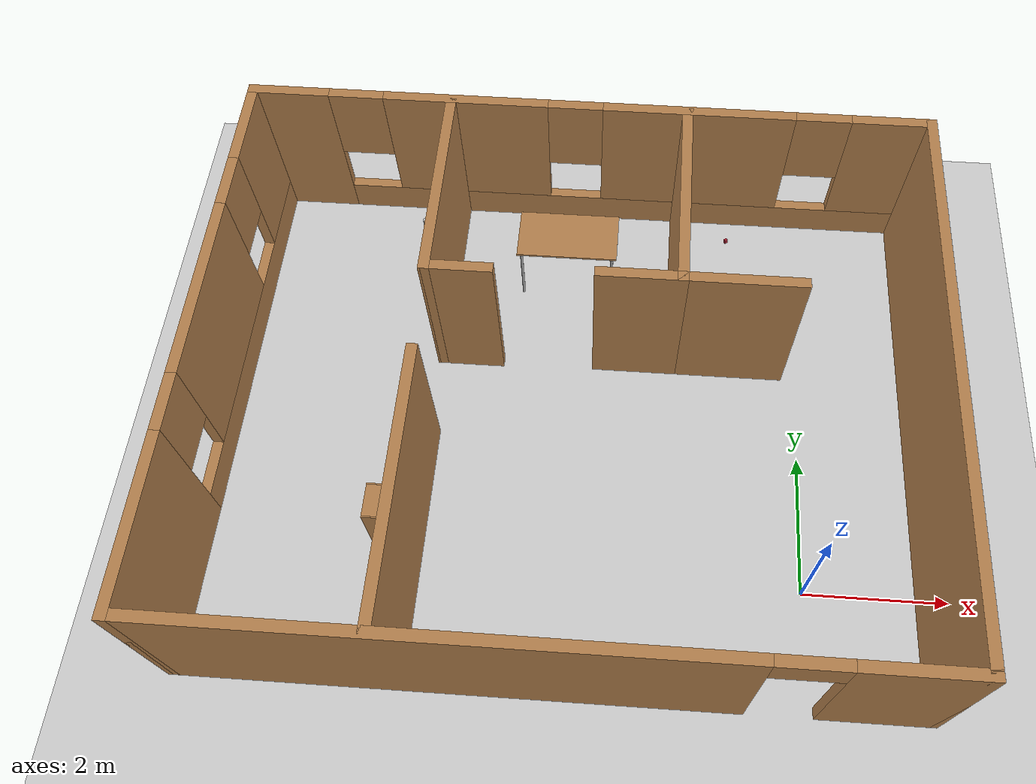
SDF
<sdf version="1.7">
 <world name="default">
  <light name="sun" type="directional">
   <pose>0 0 10 0 -0 0</pose>
   <diffuse>0.8 0.8 0.8 1</diffuse>
   <specular>0.2 0.2 0.2 1</specular>
   <attenuation>
    <range>1000</range>
    <constant>0.9</constant>
    <linear>0.01</linear>
    <quadratic>0.001</quadratic>
   </attenuation>
   <direction>-0.5 0.1 -0.9</direction>
   <spot><inner_angle>0</inner_angle><outer_angle>0</outer_angle><falloff>0</falloff></spot>
  </light>
  <model name="ground_plane">
   <static>1</static>
   <link name="link">
    <collision name="collision">
     <geometry><plane><normal>0 0 1</normal><size>100 100</size></plane></geometry>
     <surface><friction><ode><mu>100</mu><mu2>50</mu2></ode></friction></surface>
    </collision>
    <visual name="visual">
     <cast_shadows>0</cast_shadows>
     <geometry><plane><normal>0 0 1</normal><size>100 100</size></plane></geometry>
     <material>
      <script><uri>file://media/materials/scripts/gazebo.material</uri><name>Gazebo/Grey</name></script>
     </material>
    </visual>
   </link>
  </model>
  <gravity>0 0 -9.8</gravity>
  <magnetic_field>6e-06 2.3e-05 -4.2e-05</magnetic_field>
  <atmosphere type="adiabatic"/>
  <physics type="ode">
   <max_step_size>0.001</max_step_size>
   <real_time_factor>1</real_time_factor>
   <real_time_update_rate>1000</real_time_update_rate>
  </physics>
  <scene><ambient>0.4 0.4 0.4 1</ambient><background>0.7 0.7 0.7 1</background><shadows>1</shadows></scene>
  <audio><device>default</device></audio>
  <spherical_coordinates>
   <surface_model>EARTH_WGS84</surface_model>
   <latitude_deg>0</latitude_deg>
   <longitude_deg>0</longitude_deg>
   <elevation>0</elevation>
   <heading_deg>0</heading_deg>
  </spherical_coordinates>
  <model name="jessie_world.world">
   <pose>-3.31105 2.35369 0 0 -0 0</pose>
   <link name="Wall_1">
    <pose>0 -3.925 0 0 -0 0</pose>
    <visual name="Wall_1_Visual_0">
     <pose>-1.24277 0 1.25 0 -0 0</pose>
     <geometry><box><size>7.51447 0.15 2.5</size></box></geometry>
     <material>
      <script><uri>file://media/materials/scripts/gazebo.material</uri><name>Gazebo/Wood</name></script>
      <ambient>1 1 1 1</ambient>
     </material>
     <meta><layer>0</layer></meta>
    </visual>
    <collision name="Wall_1_Collision_0">
     <geometry><box><size>7.51447 0.15 2.5</size></box></geometry>
     <pose>-1.24277 0 1.25 0 -0 0</pose>
    </collision>
    <visual name="Wall_1_Visual_1">
     <pose>4.20723 0 1.25 0 -0 0</pose>
     <geometry><box><size>1.58553 0.15 2.5</size></box></geometry>
     <material>
      <script><uri>file://media/materials/scripts/gazebo.material</uri><name>Gazebo/Wood</name></script>
      <ambient>1 1 1 1</ambient>
     </material>
     <meta><layer>0</layer></meta>
    </visual>
    <collision name="Wall_1_Collision_1">
     <geometry><box><size>1.58553 0.15 2.5</size></box></geometry>
     <pose>4.20723 0 1.25 0 -0 0</pose>
    </collision>
    <visual name="Wall_1_Visual_2">
     <pose>2.96447 0 2.25 0 -0 0</pose>
     <geometry><box><size>0.9 0.15 0.5</size></box></geometry>
     <material>
      <script><uri>file://media/materials/scripts/gazebo.material</uri><name>Gazebo/Wood</name></script>
      <ambient>1 1 1 1</ambient>
     </material>
     <meta><layer>0</layer></meta>
    </visual>
    <collision name="Wall_1_Collision_2">
     <geometry><box><size>0.9 0.15 0.5</size></box></geometry>
     <pose>2.96447 0 2.25 0 -0 0</pose>
    </collision>
   </link>
   <link name="Wall_10">
    <collision name="Wall_10_Collision">
     <geometry><box><size>1.75 0.15 2.5</size></box></geometry>
     <pose>0 0 1.25 0 -0 0</pose>
    </collision>
    <visual name="Wall_10_Visual">
     <pose>0 0 1.25 0 -0 0</pose>
     <geometry><box><size>1.75 0.15 2.5</size></box></geometry>
     <material>
      <script><uri>file://media/materials/scripts/gazebo.material</uri><name>Gazebo/Wood</name></script>
      <ambient>1 1 1 1</ambient>
     </material>
     <meta><layer>0</layer></meta>
    </visual>
    <pose>2.23036 1.04462 0 0 -0 0</pose>
   </link>
   <link name="Wall_23">
    <collision name="Wall_23_Collision">
     <geometry><box><size>3 0.15 2.5</size></box></geometry>
     <pose>0 0 1.25 0 -0 0</pose>
    </collision>
    <visual name="Wall_23_Visual">
     <pose>0 0 1.25 0 -0 0</pose>
     <geometry><box><size>3 0.15 2.5</size></box></geometry>
     <material>
      <script><uri>file://media/materials/scripts/gazebo.material</uri><name>Gazebo/Wood</name></script>
      <ambient>1 1 1 1</ambient>
     </material>
     <meta><layer>0</layer></meta>
    </visual>
    <pose>-2.00813 2.42995 0 0 -0 -1.5708</pose>
   </link>
   <link name="Wall_24">
    <collision name="Wall_24_Collision">
     <geometry><box><size>1 0.15 2.5</size></box></geometry>
     <pose>0 0 1.25 0 -0 0</pose>
    </collision>
    <visual name="Wall_24_Visual">
     <pose>0 0 1.25 0 -0 0</pose>
     <geometry><box><size>1 0.15 2.5</size></box></geometry>
     <material>
      <script><uri>file://media/materials/scripts/gazebo.material</uri><name>Gazebo/Wood</name></script>
      <ambient>1 1 1 1</ambient>
     </material>
     <meta><layer>0</layer></meta>
    </visual>
    <pose>-1.58313 1.00495 0 0 -0 0</pose>
   </link>
   <link name="Wall_27">
    <collision name="Wall_27_Collision">
     <geometry><box><size>1.25 0.15 2.5</size></box></geometry>
     <pose>0 0 1.25 0 -0 0</pose>
    </collision>
    <visual name="Wall_27_Visual">
     <pose>0 0 1.25 0 -0 0</pose>
     <geometry><box><size>1.25 0.15 2.5</size></box></geometry>
     <material>
      <script><uri>file://media/materials/scripts/gazebo.material</uri><name>Gazebo/Wood</name></script>
      <ambient>1 1 1 1</ambient>
     </material>
     <meta><layer>0</layer></meta>
    </visual>
    <pose>0.880365 1.04462 0 0 -0 3.14159</pose>
   </link>
   <link name="Wall_31">
    <collision name="Wall_31_Collision">
     <geometry><box><size>3.75 0.15 2.5</size></box></geometry>
     <pose>0 0 1.25 0 -0 0</pose>
    </collision>
    <visual name="Wall_31_Visual">
     <pose>0 0 1.25 0 -0 0</pose>
     <geometry><box><size>3.75 0.15 2.5</size></box></geometry>
     <material>
      <script><uri>file://media/materials/scripts/gazebo.material</uri><name>Gazebo/Wood</name></script>
      <ambient>1 1 1 1</ambient>
     </material>
     <meta><layer>0</layer></meta>
    </visual>
    <pose>-1.98168 -2.0977 0 0 -0 -1.5708</pose>
   </link>
   <link name="Wall_5">
    <pose>-4.925 0 0 0 -0 1.5708</pose>
    <visual name="Wall_5_Visual_0">
     <pose>-2.82495 0 1.25 0 -0 0</pose>
     <geometry><box><size>2.3501 0.15 2.5</size></box></geometry>
     <material>
      <script><uri>file://media/materials/scripts/gazebo.material</uri><name>Gazebo/Wood</name></script>
      <ambient>1 1 1 1</ambient>
     </material>
     <meta><layer>0</layer></meta>
    </visual>
    <collision name="Wall_5_Collision_0">
     <geometry><box><size>2.3501 0.15 2.5</size></box></geometry>
     <pose>-2.82495 0 1.25 0 -0 0</pose>
    </collision>
    <visual name="Wall_5_Visual_1">
     <pose>1.17505 0 0.25 0 -0 0</pose>
     <geometry><box><size>5.6499 0.15 0.5</size></box></geometry>
     <material>
      <script><uri>file://media/materials/scripts/gazebo.material</uri><name>Gazebo/Wood</name></script>
      <ambient>1 1 1 1</ambient>
     </material>
     <meta><layer>0</layer></meta>
    </visual>
    <collision name="Wall_5_Collision_1">
     <geometry><box><size>5.6499 0.15 0.5</size></box></geometry>
     <pose>1.17505 0 0.25 0 -0 0</pose>
    </collision>
    <visual name="Wall_5_Visual_2">
     <pose>0.482572 0 1.5 0 -0 0</pose>
     <geometry><box><size>2.66495 0.15 2</size></box></geometry>
     <material>
      <script><uri>file://media/materials/scripts/gazebo.material</uri><name>Gazebo/Wood</name></script>
      <ambient>1 1 1 1</ambient>
     </material>
     <meta><layer>0</layer></meta>
    </visual>
    <collision name="Wall_5_Collision_2">
     <geometry><box><size>2.66495 0.15 2</size></box></geometry>
     <pose>0.482572 0 1.5 0 -0 0</pose>
    </collision>
    <visual name="Wall_5_Visual_3">
     <pose>3.30752 0 1.5 0 -0 0</pose>
     <geometry><box><size>1.38495 0.15 2</size></box></geometry>
     <material>
      <script><uri>file://media/materials/scripts/gazebo.material</uri><name>Gazebo/Wood</name></script>
      <ambient>1 1 1 1</ambient>
     </material>
     <meta><layer>0</layer></meta>
    </visual>
    <collision name="Wall_5_Collision_3">
     <geometry><box><size>1.38495 0.15 2</size></box></geometry>
     <pose>3.30752 0 1.5 0 -0 0</pose>
    </collision>
    <visual name="Wall_5_Visual_4">
     <pose>-1.2499 0 1.9 0 -0 0</pose>
     <geometry><box><size>0.8 0.15 1.2</size></box></geometry>
     <material>
      <script><uri>file://media/materials/scripts/gazebo.material</uri><name>Gazebo/Wood</name></script>
      <ambient>1 1 1 1</ambient>
     </material>
     <meta><layer>0</layer></meta>
    </visual>
    <collision name="Wall_5_Collision_4">
     <geometry><box><size>0.8 0.15 1.2</size></box></geometry>
     <pose>-1.2499 0 1.9 0 -0 0</pose>
    </collision>
    <visual name="Wall_5_Visual_5">
     <pose>2.21505 0 1.9 0 -0 0</pose>
     <geometry><box><size>0.8 0.15 1.2</size></box></geometry>
     <material>
      <script><uri>file://media/materials/scripts/gazebo.material</uri><name>Gazebo/Wood</name></script>
      <ambient>1 1 1 1</ambient>
     </material>
     <meta><layer>0</layer></meta>
    </visual>
    <collision name="Wall_5_Collision_5">
     <geometry><box><size>0.8 0.15 1.2</size></box></geometry>
     <pose>2.21505 0 1.9 0 -0 0</pose>
    </collision>
   </link>
   <link name="Wall_6">
    <pose>0 3.925 0 0 -0 0</pose>
    <visual name="Wall_6_Visual_0">
     <pose>-4.40499 0 1.25 0 -0 0</pose>
     <geometry><box><size>1.19002 0.15 2.5</size></box></geometry>
     <material>
      <script><uri>file://media/materials/scripts/gazebo.material</uri><name>Gazebo/Wood</name></script>
      <ambient>1 1 1 1</ambient>
     </material>
     <meta><layer>0</layer></meta>
    </visual>
    <collision name="Wall_6_Collision_0">
     <geometry><box><size>1.19002 0.15 2.5</size></box></geometry>
     <pose>-4.40499 0 1.25 0 -0 0</pose>
    </collision>
    <visual name="Wall_6_Visual_1">
     <pose>0.595008 0 0.25 0 -0 0</pose>
     <geometry><box><size>8.80998 0.15 0.5</size></box></geometry>
     <material>
      <script><uri>file://media/materials/scripts/gazebo.material</uri><name>Gazebo/Wood</name></script>
      <ambient>1 1 1 1</ambient>
     </material>
     <meta><layer>0</layer></meta>
    </visual>
    <collision name="Wall_6_Collision_1">
     <geometry><box><size>8.80998 0.15 0.5</size></box></geometry>
     <pose>0.595008 0 0.25 0 -0 0</pose>
    </collision>
    <visual name="Wall_6_Visual_2">
     <pose>-1.80315 0 1.5 0 -0 0</pose>
     <geometry><box><size>2.41368 0.15 2</size></box></geometry>
     <material>
      <script><uri>file://media/materials/scripts/gazebo.material</uri><name>Gazebo/Wood</name></script>
      <ambient>1 1 1 1</ambient>
     </material>
     <meta><layer>0</layer></meta>
    </visual>
    <collision name="Wall_6_Collision_2">
     <geometry><box><size>2.41368 0.15 2</size></box></geometry>
     <pose>-1.80315 0 1.5 0 -0 0</pose>
    </collision>
    <visual name="Wall_6_Visual_3">
     <pose>1.59568 0 1.5 0 -0 0</pose>
     <geometry><box><size>2.78397 0.15 2</size></box></geometry>
     <material>
      <script><uri>file://media/materials/scripts/gazebo.material</uri><name>Gazebo/Wood</name></script>
      <ambient>1 1 1 1</ambient>
     </material>
     <meta><layer>0</layer></meta>
    </visual>
    <collision name="Wall_6_Collision_3">
     <geometry><box><size>2.78397 0.15 2</size></box></geometry>
     <pose>1.59568 0 1.5 0 -0 0</pose>
    </collision>
    <visual name="Wall_6_Visual_4">
     <pose>4.39383 0 1.5 0 -0 0</pose>
     <geometry><box><size>1.21233 0.15 2</size></box></geometry>
     <material>
      <script><uri>file://media/materials/scripts/gazebo.material</uri><name>Gazebo/Wood</name></script>
      <ambient>1 1 1 1</ambient>
     </material>
     <meta><layer>0</layer></meta>
    </visual>
    <collision name="Wall_6_Collision_4">
     <geometry><box><size>1.21233 0.15 2</size></box></geometry>
     <pose>4.39383 0 1.5 0 -0 0</pose>
    </collision>
    <visual name="Wall_6_Visual_5">
     <pose>-3.40998 0 1.9 0 -0 0</pose>
     <geometry><box><size>0.8 0.15 1.2</size></box></geometry>
     <material>
      <script><uri>file://media/materials/scripts/gazebo.material</uri><name>Gazebo/Wood</name></script>
      <ambient>1 1 1 1</ambient>
     </material>
     <meta><layer>0</layer></meta>
    </visual>
    <collision name="Wall_6_Collision_5">
     <geometry><box><size>0.8 0.15 1.2</size></box></geometry>
     <pose>-3.40998 0 1.9 0 -0 0</pose>
    </collision>
    <visual name="Wall_6_Visual_6">
     <pose>-0.19631 0 1.9 0 -0 0</pose>
     <geometry><box><size>0.8 0.15 1.2</size></box></geometry>
     <material>
      <script><uri>file://media/materials/scripts/gazebo.material</uri><name>Gazebo/Wood</name></script>
      <ambient>1 1 1 1</ambient>
     </material>
     <meta><layer>0</layer></meta>
    </visual>
    <collision name="Wall_6_Collision_6">
     <geometry><box><size>0.8 0.15 1.2</size></box></geometry>
     <pose>-0.19631 0 1.9 0 -0 0</pose>
    </collision>
    <visual name="Wall_6_Visual_7">
     <pose>3.38767 0 1.9 0 -0 0</pose>
     <geometry><box><size>0.8 0.15 1.2</size></box></geometry>
     <material>
      <script><uri>file://media/materials/scripts/gazebo.material</uri><name>Gazebo/Wood</name></script>
      <ambient>1 1 1 1</ambient>
     </material>
     <meta><layer>0</layer></meta>
    </visual>
    <collision name="Wall_6_Collision_7">
     <geometry><box><size>0.8 0.15 1.2</size></box></geometry>
     <pose>3.38767 0 1.9 0 -0 0</pose>
    </collision>
   </link>
   <link name="Wall_7">
    <collision name="Wall_7_Collision">
     <geometry><box><size>8 0.15 2.5</size></box></geometry>
     <pose>0 0 1.25 0 -0 0</pose>
    </collision>
    <visual name="Wall_7_Visual">
     <pose>0 0 1.25 0 -0 0</pose>
     <geometry><box><size>8 0.15 2.5</size></box></geometry>
     <material>
      <script><uri>file://media/materials/scripts/gazebo.material</uri><name>Gazebo/Wood</name></script>
      <ambient>1 1 1 1</ambient>
     </material>
     <meta><layer>0</layer></meta>
    </visual>
    <pose>4.925 0 0 0 -0 -1.5708</pose>
   </link>
   <link name="Wall_9">
    <collision name="Wall_9_Collision">
     <geometry><box><size>3 0.15 2.5</size></box></geometry>
     <pose>0 0 1.25 0 -0 0</pose>
    </collision>
    <visual name="Wall_9_Visual">
     <pose>0 0 1.25 0 -0 0</pose>
     <geometry><box><size>3 0.15 2.5</size></box></geometry>
     <material>
      <script><uri>file://media/materials/scripts/gazebo.material</uri><name>Gazebo/Wood</name></script>
      <ambient>1 1 1 1</ambient>
     </material>
     <meta><layer>0</layer></meta>
    </visual>
    <pose>1.43037 2.46962 0 0 -0 -1.5708</pose>
   </link>
   <static>1</static>
  </model>
  <model name="table">
   <static>1</static>
   <link name="link">
    <collision name="surface">
     <pose>0 0 1 0 -0 0</pose>
     <geometry><box><size>1.5 0.8 0.03</size></box></geometry>
     <surface><friction><ode><mu>0.6</mu><mu2>0.6</mu2></ode></friction></surface>
    </collision>
    <visual name="visual1">
     <pose>0 0 1 0 -0 0</pose>
     <geometry><box><size>1.5 0.8 0.03</size></box></geometry>
     <material>
      <script><uri>file://media/materials/scripts/gazebo.material</uri><name>Gazebo/Wood</name></script>
     </material>
    </visual>
    <collision name="front_left_leg">
     <pose>0.68 0.38 0.5 0 -0 0</pose>
     <geometry><cylinder><radius>0.02</radius><length>1</length></cylinder></geometry>
    </collision>
    <visual name="front_left_leg">
     <pose>0.68 0.38 0.5 0 -0 0</pose>
     <geometry><cylinder><radius>0.02</radius><length>1</length></cylinder></geometry>
     <material>
      <script><uri>file://media/materials/scripts/gazebo.material</uri><name>Gazebo/Grey</name></script>
     </material>
    </visual>
    <collision name="front_right_leg">
     <pose>0.68 -0.38 0.5 0 -0 0</pose>
     <geometry><cylinder><radius>0.02</radius><length>1</length></cylinder></geometry>
    </collision>
    <visual name="front_right_leg">
     <pose>0.68 -0.38 0.5 0 -0 0</pose>
     <geometry><cylinder><radius>0.02</radius><length>1</length></cylinder></geometry>
     <material>
      <script><uri>file://media/materials/scripts/gazebo.material</uri><name>Gazebo/Grey</name></script>
     </material>
    </visual>
    <collision name="back_right_leg">
     <pose>-0.68 -0.38 0.5 0 -0 0</pose>
     <geometry><cylinder><radius>0.02</radius><length>1</length></cylinder></geometry>
    </collision>
    <visual name="back_right_leg">
     <pose>-0.68 -0.38 0.5 0 -0 0</pose>
     <geometry><cylinder><radius>0.02</radius><length>1</length></cylinder></geometry>
     <material>
      <script><uri>file://media/materials/scripts/gazebo.material</uri><name>Gazebo/Grey</name></script>
     </material>
    </visual>
    <collision name="back_left_leg">
     <pose>-0.68 0.38 0.5 0 -0 0</pose>
     <geometry><cylinder><radius>0.02</radius><length>1</length></cylinder></geometry>
    </collision>
    <visual name="back_left_leg">
     <pose>-0.68 0.38 0.5 0 -0 0</pose>
     <geometry><cylinder><radius>0.02</radius><length>1</length></cylinder></geometry>
     <material>
      <script><uri>file://media/materials/scripts/gazebo.material</uri><name>Gazebo/Grey</name></script>
     </material>
    </visual>
   </link>
   <pose>-3.53573 5.04641 0 0 -0 0</pose>
  </model>
  <model name="cabinet">
   <static>1</static>
   <link name="cabinet_bottom_plate">
    <inertial>
     <pose>0 0 -1 0 -0 0</pose>
     <inertia><ixx>2.05</ixx><ixy>0</ixy><ixz>0</ixz><iyy>2.05</iyy><iyz>0</iyz><izz>2.05</izz></inertia>
     <mass>25</mass>
    </inertial>
    <collision name="cabinet_bottom_plate_geom">
     <pose>0 0 0.01 0 -0 0</pose>
     <geometry><box><size>0.45 0.45 0.02</size></box></geometry>
    </collision>
    <visual name="cabinet_bottom_plate_geom_visual">
     <pose>0 0 0.01 0 -0 0</pose>
     <geometry><box><size>0.45 0.45 0.02</size></box></geometry>
     <material>
      <script><uri>file://media/materials/scripts/gazebo.material</uri><name>Gazebo/Wood</name></script>
     </material>
    </visual>
    <collision name="cabinet_bottom_plate_geom_cabinet_back_plate">
     <pose>0.235 0 0.51 0 -0 0</pose>
     <geometry><box><size>0.02 0.45 1.02</size></box></geometry>
    </collision>
    <visual name="cabinet_bottom_plate_geom_cabinet_back_plate_visual">
     <pose>0.235 0 0.51 0 -0 0</pose>
     <geometry><box><size>0.02 0.45 1.02</size></box></geometry>
     <material>
      <script><uri>file://media/materials/scripts/gazebo.material</uri><name>Gazebo/Wood</name></script>
     </material>
    </visual>
    <collision name="cabinet_bottom_plate_geom_cabinet_left_plate">
     <pose>0 0.235 0.51 0 -0 0</pose>
     <geometry><box><size>0.45 0.02 1.02</size></box></geometry>
    </collision>
    <visual name="cabinet_bottom_plate_geom_cabinet_left_plate_visual">
     <pose>0 0.235 0.51 0 -0 0</pose>
     <geometry><box><size>0.45 0.02 1.02</size></box></geometry>
     <material>
      <script><uri>file://media/materials/scripts/gazebo.material</uri><name>Gazebo/Wood</name></script>
     </material>
    </visual>
    <collision name="cabinet_bottom_plate_geom_cabinet_middle_plate">
     <pose>0 0 0.51 0 -0 0</pose>
     <geometry><box><size>0.45 0.45 0.02</size></box></geometry>
    </collision>
    <visual name="cabinet_bottom_plate_geom_cabinet_middle_plate_visual">
     <pose>0 0 0.51 0 -0 0</pose>
     <geometry><box><size>0.45 0.45 0.02</size></box></geometry>
     <material>
      <script><uri>file://media/materials/scripts/gazebo.material</uri><name>Gazebo/Wood</name></script>
     </material>
    </visual>
    <collision name="cabinet_bottom_plate_geom_cabinet_right_plate">
     <pose>0 -0.235 0.51 0 -0 0</pose>
     <geometry><box><size>0.45 0.02 1.02</size></box></geometry>
    </collision>
    <visual name="cabinet_bottom_plate_geom_cabinet_right_plate_visual">
     <pose>0 -0.235 0.51 0 -0 0</pose>
     <geometry><box><size>0.45 0.02 1.02</size></box></geometry>
     <material>
      <script><uri>file://media/materials/scripts/gazebo.material</uri><name>Gazebo/Wood</name></script>
     </material>
    </visual>
    <collision name="cabinet_bottom_plate_geom_cabinet_top_plate">
     <pose>0 0 1.01 0 -0 0</pose>
     <geometry><box><size>0.45 0.45 0.02</size></box></geometry>
    </collision>
    <visual name="cabinet_bottom_plate_geom_cabinet_top_plate_visual">
     <pose>0 0 1.01 0 -0 0</pose>
     <geometry><box><size>0.45 0.45 0.02</size></box></geometry>
     <material>
      <script><uri>file://media/materials/scripts/gazebo.material</uri><name>Gazebo/Wood</name></script>
     </material>
    </visual>
   </link>
   <pose>-5.6922 0.563942 0 0 -0 0</pose>
  </model>
  <model name="beer">
   <link name="link">
    <pose>0 0 0.115 0 -0 0</pose>
    <inertial>
     <mass>0.39</mass>
     <inertia><ixx>0.00058</ixx><ixy>0</ixy><ixz>0</ixz><iyy>0.00058</iyy><iyz>0</iyz><izz>0.00019</izz></inertia>
    </inertial>
    <collision name="collision">
     <geometry><cylinder><radius>0.055</radius><length>0.23</length></cylinder></geometry>
    </collision>
    <visual name="visual">
     <geometry><cylinder><radius>0.055</radius><length>0.23</length></cylinder></geometry>
     <material>
      <script>
       <uri>model://beer/materials/scripts</uri>
       <uri>model://beer/materials/textures</uri>
       <name>Beer/Diffuse</name>
      </script>
     </material>
    </visual>
   </link>
   <pose>-5.90352 5.77702 -2e-06 1e-06 -0 -5.6e-05</pose>
  </model>
  <model name="unit_box">
   <link name="link">
    <inertial>
     <mass>0.05</mass>
     <inertia>
      <ixx>5.649e-05</ixx>
      <ixy>0</ixy>
      <ixz>0</ixz>
      <iyy>6.849e-05</iyy>
      <iyz>0</iyz>
      <izz>3.803e-05</izz>
     </inertia>
    </inertial>
    <visual name="visual">
     <geometry><box><size>0.0458278 0.0457717 0.0668424</size></box></geometry>
     <material>
      <script><name>Gazebo/Grey</name><uri>file://media/materials/scripts/gazebo.material</uri></script>
      <shader type="pixel"><normal_map>__default__</normal_map></shader>
      <ambient>0.647 0.114 0.176 1</ambient>
      <diffuse>0.647 0.114 0.176 1</diffuse>
      <specular>0.239 0.22 0.275 1</specular>
      <emissive>0.643 0.114 0.173 1</emissive>
     </material>
    </visual>
    <collision name="collision">
     <geometry><box><size>0.0458278 0.0457717 0.0668424</size></box></geometry>
     <surface>
      <friction>
       <ode><mu>1</mu><mu2>1</mu2><fdir1>0 0 0</fdir1><slip1>0</slip1><slip2>0</slip2></ode>
       <torsional>
        <coefficient>1</coefficient>
        <patch_radius>0</patch_radius>
        <surface_radius>0</surface_radius>
        <use_patch_radius>1</use_patch_radius>
        <ode><slip>0</slip></ode>
       </torsional>
      </friction>
      <bounce><restitution_coefficient>0</restitution_coefficient><threshold>1e+06</threshold></bounce>
      <contact>
       <collide_without_contact>0</collide_without_contact>
       <collide_without_contact_bitmask>1</collide_without_contact_bitmask>
       <collide_bitmask>1</collide_bitmask>
       <ode>
        <soft_cfm>0</soft_cfm>
        <soft_erp>0.2</soft_erp>
        <kp>1e+13</kp>
        <kd>1</kd>
        <max_vel>0.01</max_vel>
        <min_depth>0</min_depth>
       </ode>
       <bullet>
        <split_impulse>1</split_impulse>
        <split_impulse_penetration_threshold>-0.01</split_impulse_penetration_threshold>
        <soft_cfm>0</soft_cfm>
        <soft_erp>0.2</soft_erp>
        <kp>1e+13</kp>
        <kd>1</kd>
       </bullet>
      </contact>
     </surface>
    </collision>
   </link>
   <static>0</static>
   <pose>-1.04235 5.83527 0.033421 0 -0 0.626386</pose>
  </model>
 </world>
</sdf>
